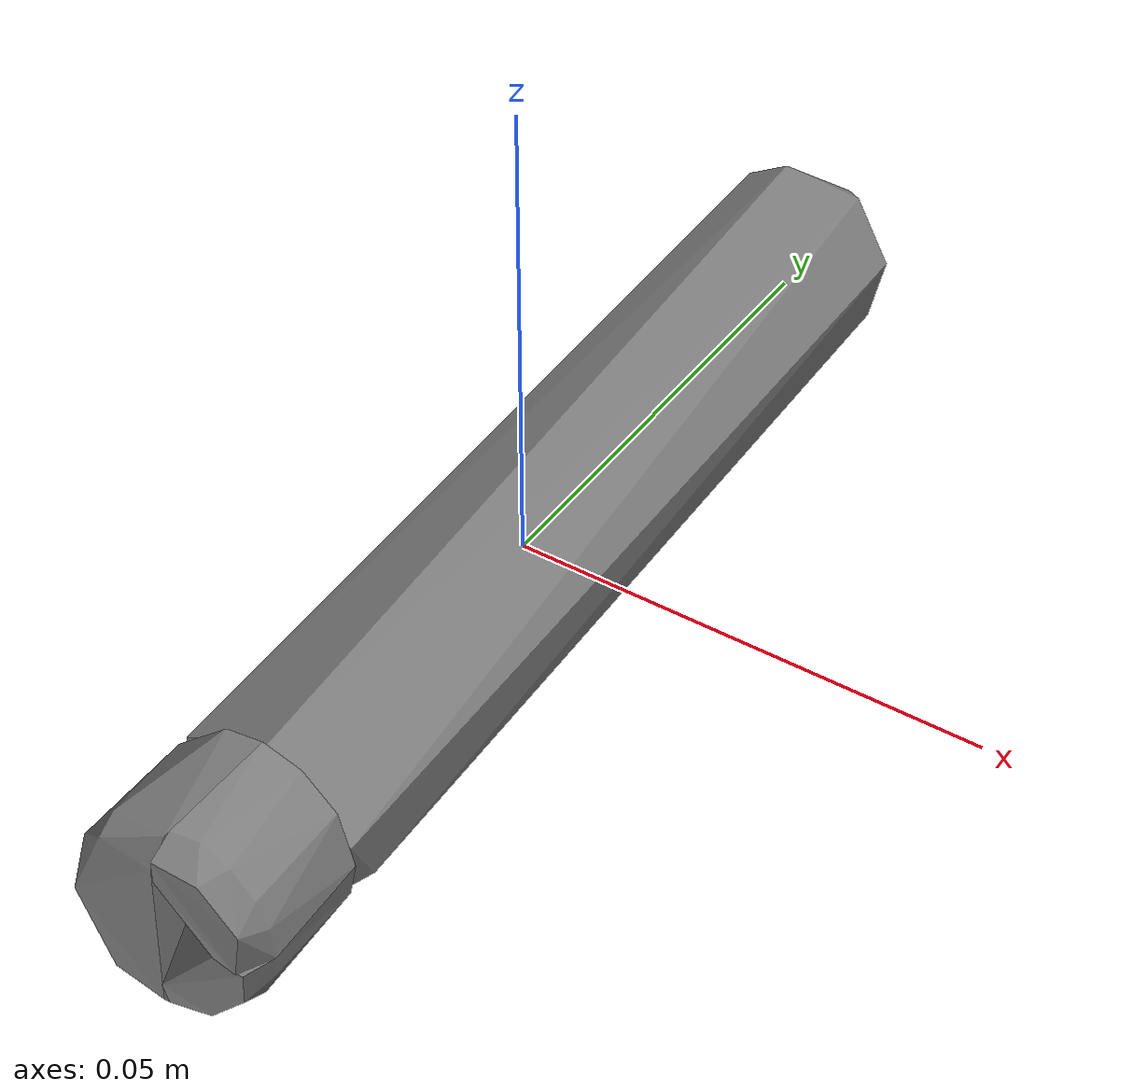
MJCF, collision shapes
<mujoco model="large_marker">
  <compiler angle="radian" />

  <asset>
    <mesh name="large_marker_visual_mesh" file="large_marker/textured.obj" />
    <mesh name="large_marker_collision_mesh_0" file="large_marker/textured_coacd_0.stl" />
    <mesh name="large_marker_collision_mesh_1" file="large_marker/textured_coacd_1.stl" />
    <mesh name="large_marker_collision_mesh_2" file="large_marker/textured_coacd_2.stl" />
    <mesh name="large_marker_collision_mesh_3" file="large_marker/textured_coacd_3.stl" />
    <texture name="large_marker_texture" type="2d" file="large_marker/texture_map.png" />
    <material name="large_marker_material" texture="large_marker_texture" />
  </asset>

  <worldbody>
    <body name="large_marker" pos="0 0 0" euler="0 0 0">
      <freejoint name="large_marker_joint" />
      <geom name="large_marker_visual_geom" type="mesh" mesh="large_marker_visual_mesh" material="large_marker_material" pos="0.035725124851894 0.00788077074326952 -0.009018296996191045" euler="0 0 0" contype="0" conaffinity="0" group="0" />
      <geom name="large_marker_collision_geom_0" type="mesh" mesh="large_marker_collision_mesh_0" pos="0.035725124851894 0.00788077074326952 -0.009018296996191045" euler="0 0 0" contype="1" conaffinity="1" group="3" />
      <geom name="large_marker_collision_geom_1" type="mesh" mesh="large_marker_collision_mesh_1" pos="0.035725124851894 0.00788077074326952 -0.009018296996191045" euler="0 0 0" contype="1" conaffinity="1" group="3" />
      <geom name="large_marker_collision_geom_2" type="mesh" mesh="large_marker_collision_mesh_2" pos="0.035725124851894 0.00788077074326952 -0.009018296996191045" euler="0 0 0" contype="1" conaffinity="1" group="3" />
      <geom name="large_marker_collision_geom_3" type="mesh" mesh="large_marker_collision_mesh_3" pos="0.035725124851894 0.00788077074326952 -0.009018296996191045" euler="0 0 0" contype="1" conaffinity="1" group="3" />
      <inertial pos="0 0 0" euler="0 0 0" mass="0.0158" diaginertia="0.001 0.001 0.001" />
    </body>
  </worldbody>
</mujoco>
